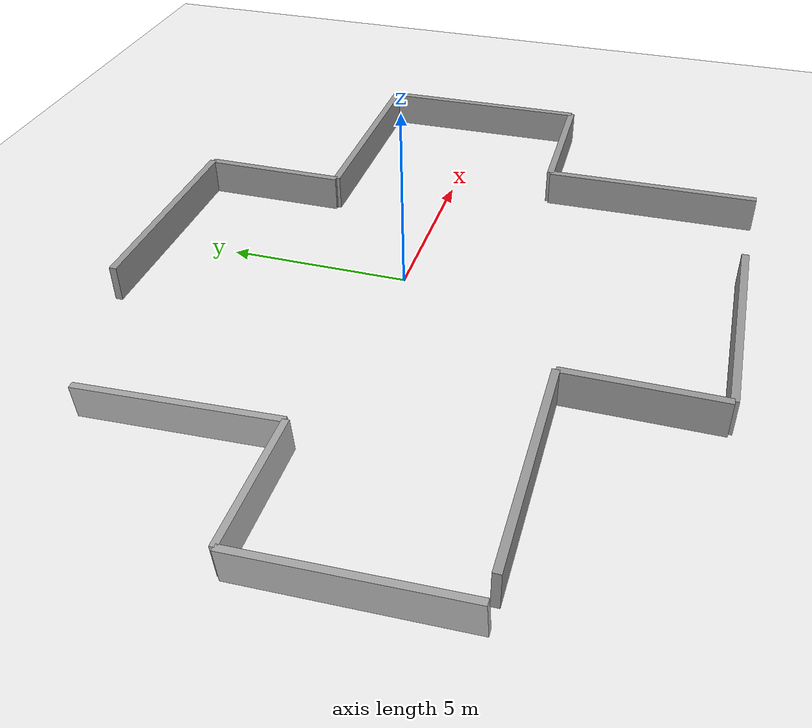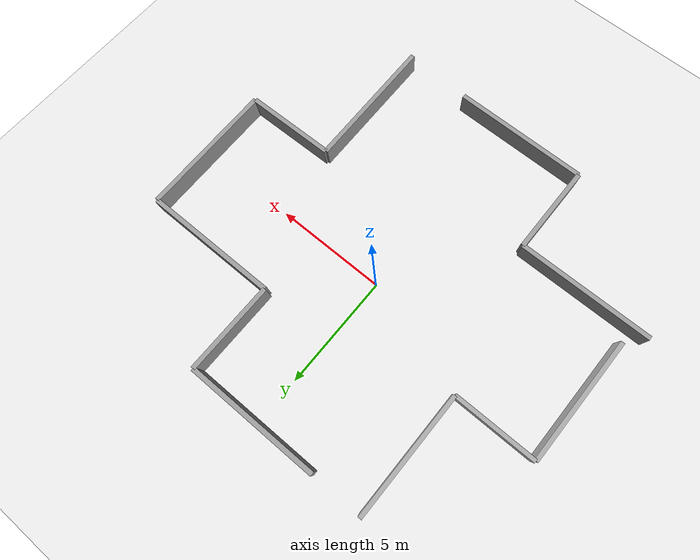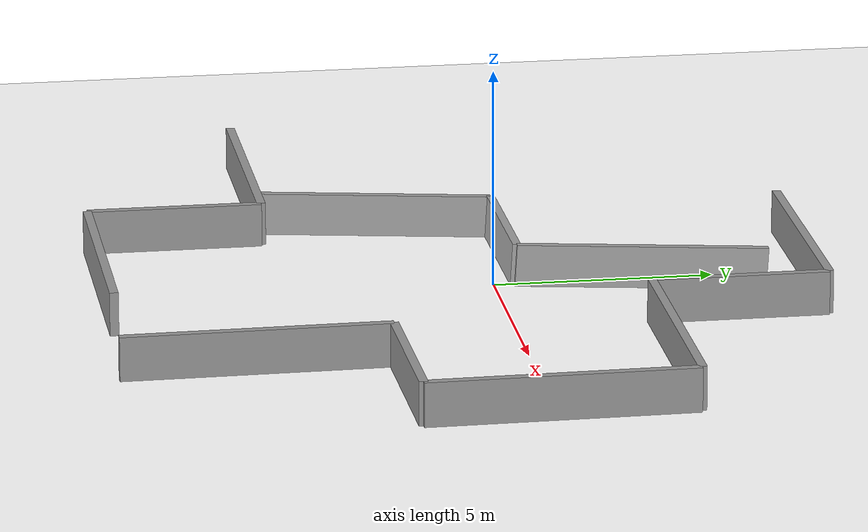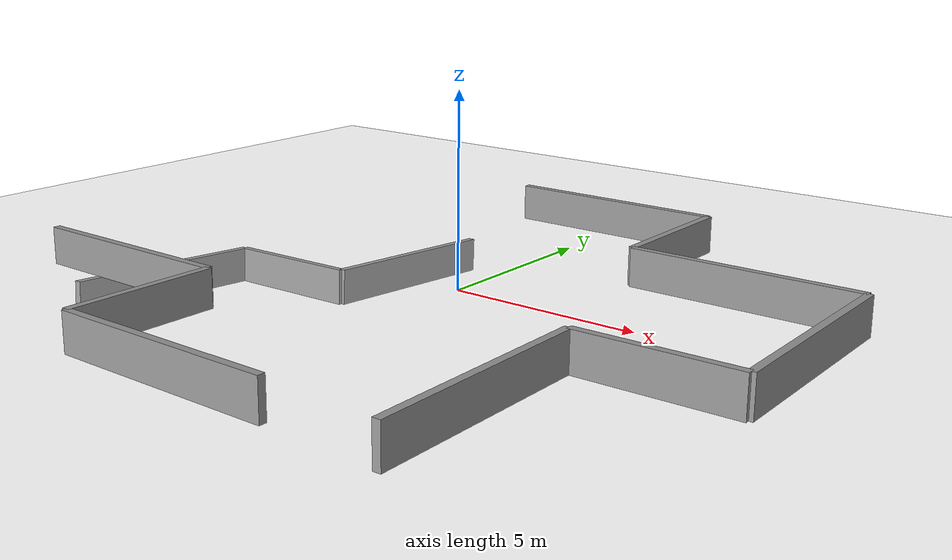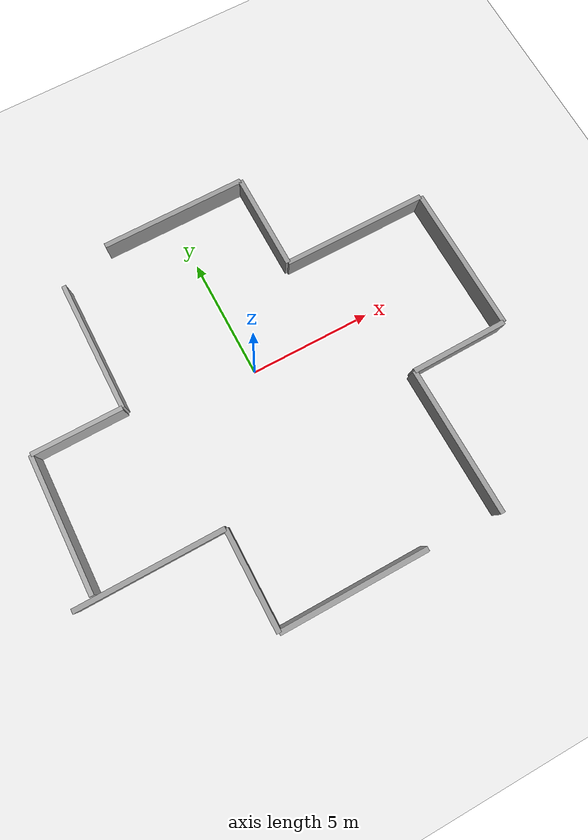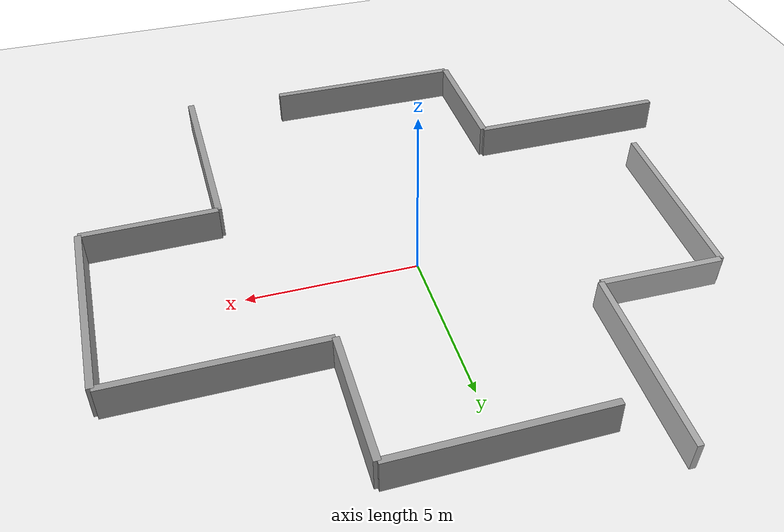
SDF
<sdf version="1.7">
 <world name="custom_world">
  <physics type="ode">
   <max_step_size>0.001</max_step_size>
   <real_time_factor>1</real_time_factor>
   <real_time_update_rate>1000</real_time_update_rate>
  </physics>
  <light name="sun" type="directional">
   <pose>0 0 10 0 -0 0</pose>
   <diffuse>0.8 0.8 0.8 1</diffuse>
   <specular>0.2 0.2 0.2 1</specular>
   <attenuation>
    <range>1000</range>
    <constant>0.9</constant>
    <linear>0.01</linear>
    <quadratic>0.001</quadratic>
   </attenuation>
   <direction>-0.5 0.1 -0.9</direction>
   <spot><inner_angle>0</inner_angle><outer_angle>0</outer_angle><falloff>0</falloff></spot>
  </light>
  <model name="ground_plane">
   <static>1</static>
   <link name="link">
    <collision name="collision">
     <geometry><plane><normal>0 0 1</normal><size>100 100</size></plane></geometry>
     <surface>
      <contact><collide_bitmask>65535</collide_bitmask></contact>
      <friction><ode><mu>100</mu><mu2>50</mu2></ode></friction>
     </surface>
    </collision>
    <visual name="visual">
     <cast_shadows>0</cast_shadows>
     <geometry><plane><normal>0 0 1</normal><size>100 100</size></plane></geometry>
     <material>
      <script><uri>file://media/materials/scripts/gazebo.material</uri><name>Gazebo/Grey</name></script>
     </material>
    </visual>
   </link>
  </model>
  <model name="maze_walls">
   <pose>3.10338 3.0643 0 0 -0 0</pose>
   <static>1</static>
   <link name="link">
    <collision name="wall_1_collision">
     <geometry><box><size>6 0.2 1</size></box></geometry>
     <pose>3 0 0.5 0 -0 0</pose>
    </collision>
    <visual name="wall_1_visual">
     <geometry><box><size>6 0.2 1</size></box></geometry>
     <pose>3 0 0.5 0 -0 0</pose>
     <material>
      <script><name>Gazebo/Grey</name><uri>file://media/materials/scripts/gazebo.material</uri></script>
     </material>
    </visual>
    <collision name="wall_2_collision">
     <geometry><box><size>0.2 4 1</size></box></geometry>
     <pose>0 2 0.5 0 -0 0</pose>
    </collision>
    <visual name="wall_2_visual">
     <geometry><box><size>0.2 4 1</size></box></geometry>
     <pose>0 2 0.5 0 -0 0</pose>
     <material>
      <script><name>Gazebo/Grey</name><uri>file://media/materials/scripts/gazebo.material</uri></script>
     </material>
    </visual>
    <collision name="wall_3_collision">
     <geometry><box><size>6 0.2 1</size></box></geometry>
     <pose>-3 4 0.5 0 -0 0</pose>
    </collision>
    <visual name="wall_3_visual">
     <geometry><box><size>6 0.2 1</size></box></geometry>
     <pose>-3 4 0.5 0 -0 0</pose>
     <material>
      <script><name>Gazebo/Grey</name><uri>file://media/materials/scripts/gazebo.material</uri></script>
     </material>
    </visual>
   </link>
  </model>
  <gravity>0 0 -9.8</gravity>
  <magnetic_field>6e-06 2.3e-05 -4.2e-05</magnetic_field>
  <atmosphere type="adiabatic"/>
  <scene><ambient>0.4 0.4 0.4 1</ambient><background>0.7 0.7 0.7 1</background><shadows>1</shadows></scene>
  <spherical_coordinates>
   <surface_model>EARTH_WGS84</surface_model>
   <latitude_deg>0</latitude_deg>
   <longitude_deg>0</longitude_deg>
   <elevation>0</elevation>
   <heading_deg>0</heading_deg>
  </spherical_coordinates>
  <model name="maze_walls_clone">
   <static>1</static>
   <link name="link">
    <collision name="wall_1_collision">
     <geometry><box><size>6 0.2 1</size></box></geometry>
     <pose>3 0 0.5 0 -0 0</pose>
    </collision>
    <visual name="wall_1_visual">
     <geometry><box><size>6 0.2 1</size></box></geometry>
     <pose>3 0 0.5 0 -0 0</pose>
     <material>
      <script><name>Gazebo/Grey</name><uri>file://media/materials/scripts/gazebo.material</uri></script>
     </material>
    </visual>
    <collision name="wall_2_collision">
     <geometry><box><size>0.2 4 1</size></box></geometry>
     <pose>0 2 0.5 0 -0 0</pose>
    </collision>
    <visual name="wall_2_visual">
     <geometry><box><size>0.2 4 1</size></box></geometry>
     <pose>0 2 0.5 0 -0 0</pose>
     <material>
      <script><name>Gazebo/Grey</name><uri>file://media/materials/scripts/gazebo.material</uri></script>
     </material>
    </visual>
    <collision name="wall_3_collision">
     <geometry><box><size>6 0.2 1</size></box></geometry>
     <pose>-3 4 0.5 0 -0 0</pose>
    </collision>
    <visual name="wall_3_visual">
     <geometry><box><size>6 0.2 1</size></box></geometry>
     <pose>-3 4 0.5 0 -0 0</pose>
     <material>
      <script><name>Gazebo/Grey</name><uri>file://media/materials/scripts/gazebo.material</uri></script>
     </material>
    </visual>
   </link>
   <pose>9.19609 -2.94595 0 0 -0 1.58428</pose>
  </model>
  <model name="maze_walls_clone_0">
   <static>1</static>
   <link name="link">
    <collision name="wall_1_collision">
     <geometry><box><size>6 0.2 1</size></box></geometry>
     <pose>3 0 0.5 0 -0 0</pose>
    </collision>
    <visual name="wall_1_visual">
     <geometry><box><size>6 0.2 1</size></box></geometry>
     <pose>3 0 0.5 0 -0 0</pose>
     <material>
      <script><name>Gazebo/Grey</name><uri>file://media/materials/scripts/gazebo.material</uri></script>
     </material>
    </visual>
    <collision name="wall_2_collision">
     <geometry><box><size>0.2 4 1</size></box></geometry>
     <pose>0 2 0.5 0 -0 0</pose>
    </collision>
    <visual name="wall_2_visual">
     <geometry><box><size>0.2 4 1</size></box></geometry>
     <pose>0 2 0.5 0 -0 0</pose>
     <material>
      <script><name>Gazebo/Grey</name><uri>file://media/materials/scripts/gazebo.material</uri></script>
     </material>
    </visual>
    <collision name="wall_3_collision">
     <geometry><box><size>6 0.2 1</size></box></geometry>
     <pose>-3 4 0.5 0 -0 0</pose>
    </collision>
    <visual name="wall_3_visual">
     <geometry><box><size>6 0.2 1</size></box></geometry>
     <pose>-3 4 0.5 0 -0 0</pose>
     <material>
      <script><name>Gazebo/Grey</name><uri>file://media/materials/scripts/gazebo.material</uri></script>
     </material>
    </visual>
   </link>
   <pose>-3.71669 -8.80161 0 0 -0 0</pose>
  </model>
  <model name="maze_walls_clone_1">
   <static>1</static>
   <link name="link">
    <collision name="wall_1_collision">
     <geometry><box><size>6 0.2 1</size></box></geometry>
     <pose>3 0 0.5 0 -0 0</pose>
    </collision>
    <visual name="wall_1_visual">
     <geometry><box><size>6 0.2 1</size></box></geometry>
     <pose>3 0 0.5 0 -0 0</pose>
     <material>
      <script><name>Gazebo/Grey</name><uri>file://media/materials/scripts/gazebo.material</uri></script>
     </material>
    </visual>
    <collision name="wall_2_collision">
     <geometry><box><size>0.2 4 1</size></box></geometry>
     <pose>0 2 0.5 0 -0 0</pose>
    </collision>
    <visual name="wall_2_visual">
     <geometry><box><size>0.2 4 1</size></box></geometry>
     <pose>0 2 0.5 0 -0 0</pose>
     <material>
      <script><name>Gazebo/Grey</name><uri>file://media/materials/scripts/gazebo.material</uri></script>
     </material>
    </visual>
    <collision name="wall_3_collision">
     <geometry><box><size>6 0.2 1</size></box></geometry>
     <pose>-3 4 0.5 0 -0 0</pose>
    </collision>
    <visual name="wall_3_visual">
     <geometry><box><size>6 0.2 1</size></box></geometry>
     <pose>-3 4 0.5 0 -0 0</pose>
     <material>
      <script><name>Gazebo/Grey</name><uri>file://media/materials/scripts/gazebo.material</uri></script>
     </material>
    </visual>
   </link>
   <pose>-5.23353 1.33159 -1.77678 -0.015342 0.059388 1.56674</pose>
  </model>
 </world>
</sdf>
